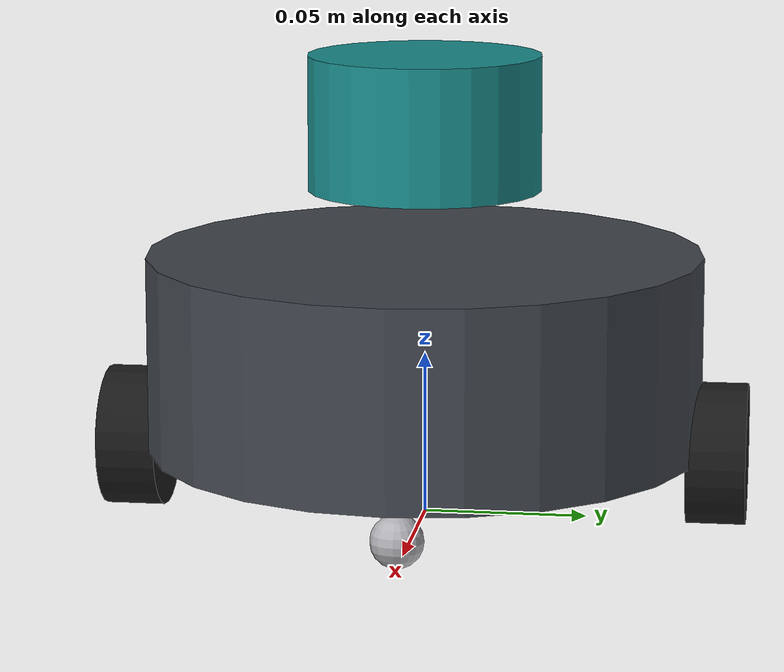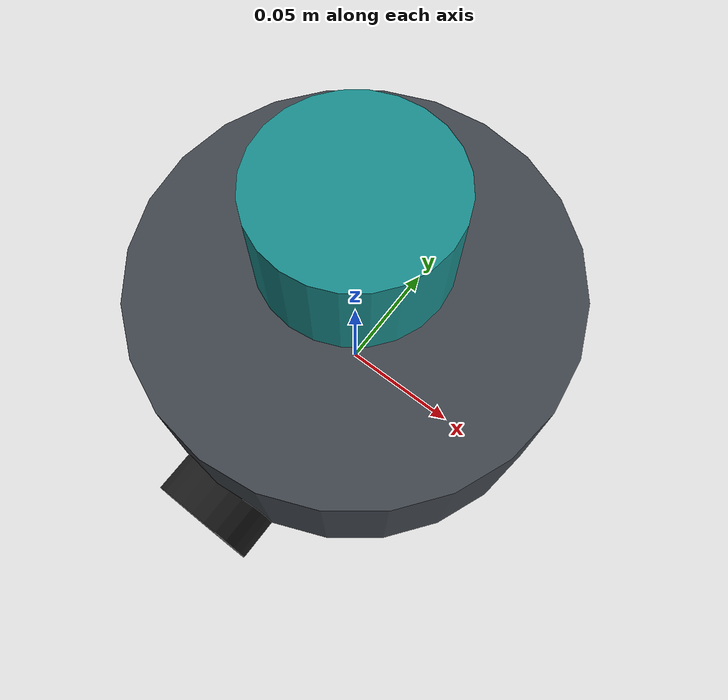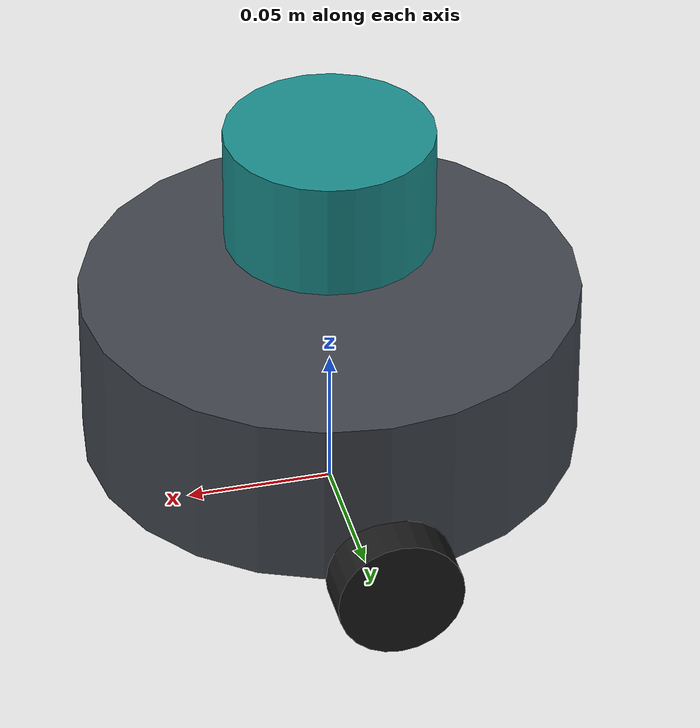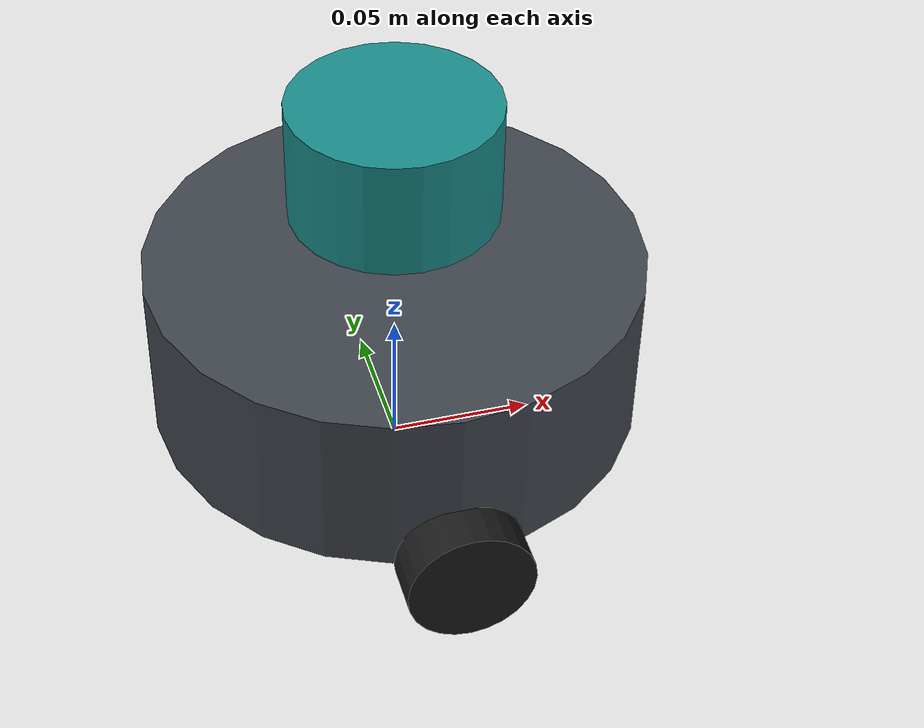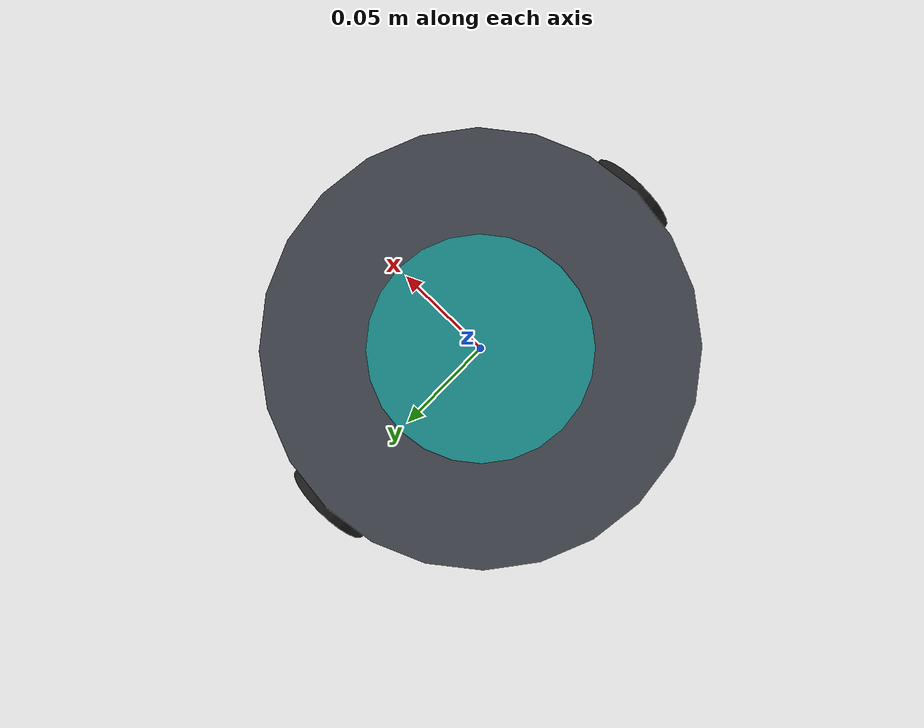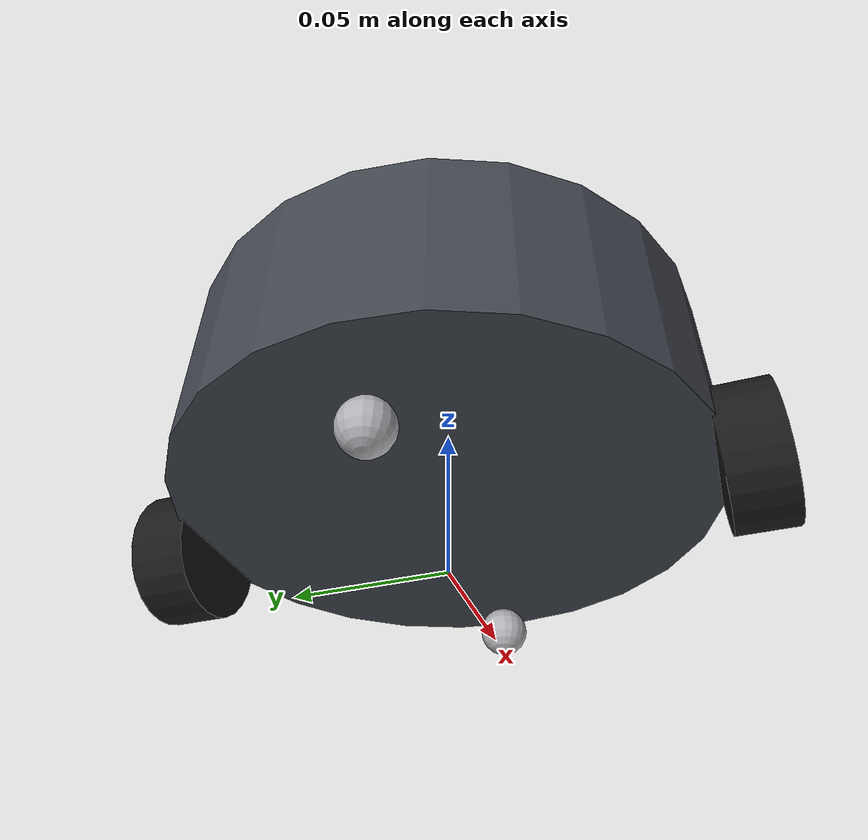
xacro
<?xml version="1.0"?>
<robot xmlns:xacro="http://www.ros.org/wiki/xacro" name="bot">

  <!-- ==========================================================
       Arguments
       ========================================================== -->
  <!-- true  -> mock_components/GenericSystem, no ESP32 needed
       false -> the real bot_hardware micro-ROS bridge -->
  <xacro:arg name="use_mock_hardware" default="false"/>

  <!-- Topics the hardware interface uses to talk to the ESP32 -->
  <xacro:arg name="wheel_cmd_topic"   default="/wheel_cmd"/>
  <xacro:arg name="wheel_state_topic" default="/wheel_state"/>

  <!-- ==========================================================
       Geometry  (metres / kg)
       ========================================================== -->
  <!-- Circular chassis: 170 mm diameter -->
  <xacro:property name="base_radius"    value="0.085"/>
  <xacro:property name="base_height"    value="0.060"/>
  <xacro:property name="base_mass"      value="0.900"/>

  <!-- Wheels: 43 mm diameter. Wheel separation (track) is 180 mm, so each
       wheel centre sits 90 mm off the centreline - slightly outside the
       chassis edge, which matches the build. -->
  <xacro:property name="wheel_radius"     value="0.0215"/>
  <xacro:property name="wheel_width"      value="0.018"/>
  <xacro:property name="wheel_separation" value="0.180"/>
  <xacro:property name="wheel_mass"       value="0.030"/>
  <!-- Wheels sit on the centre line of the chassis (x = 0). Move this if your
       axle is forward or aft of centre. -->
  <xacro:property name="wheel_x_offset"   value="0.0"/>

  <!-- Ball casters, front and rear -->
  <xacro:property name="caster_radius"    value="0.008"/>
  <xacro:property name="caster_x"         value="0.062"/>

  <!-- RPLidar A1M8 mount, relative to base_link -->
  <xacro:property name="lidar_x"          value="0.0"/>
  <xacro:property name="lidar_y"          value="0.0"/>
  <xacro:property name="lidar_z"          value="0.100"/>
  <!-- Rotate the laser frame if the lidar's zero-degree mark does not point
       straight ahead. See docs/CALIBRATION.md, "Lidar alignment". -->
  <xacro:property name="lidar_yaw"        value="0.0"/>

  <!-- MPU6050 mount, relative to base_link -->
  <xacro:property name="imu_x"            value="0.0"/>
  <xacro:property name="imu_y"            value="0.0"/>
  <xacro:property name="imu_z"            value="0.040"/>

  <!-- Command limits -->
  <xacro:property name="max_wheel_rad_s"  value="14.0"/>

  <!-- ==========================================================
       Includes
       ========================================================== -->
  <xacro:include filename="$(find bot_description)/urdf/materials.xacro"/>
  <xacro:include filename="$(find bot_description)/urdf/inertial_macros.xacro"/>
  <xacro:include filename="$(find bot_description)/urdf/base.xacro"/>
  <xacro:include filename="$(find bot_description)/urdf/wheels.xacro"/>
  <xacro:include filename="$(find bot_description)/urdf/sensors.xacro"/>
  <xacro:include filename="$(find bot_description)/urdf/ros2_control.xacro"/>

</robot>

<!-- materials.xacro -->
<robot xmlns:xacro="http://www.ros.org/wiki/xacro">

  <material name="chassis_grey">  <color rgba="0.25 0.27 0.30 1.0"/></material>
  <material name="wheel_black">   <color rgba="0.10 0.10 0.10 1.0"/></material>
  <material name="caster_silver"> <color rgba="0.70 0.70 0.72 1.0"/></material>
  <material name="lidar_teal">    <color rgba="0.10 0.55 0.55 1.0"/></material>
  <material name="imu_amber">     <color rgba="0.85 0.55 0.10 1.0"/></material>

</robot>

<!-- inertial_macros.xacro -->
<robot xmlns:xacro="http://www.ros.org/wiki/xacro">

  <xacro:macro name="inertial_cylinder" params="mass radius length *origin">
    <inertial>
      <xacro:insert_block name="origin"/>
      <mass value="${mass}"/>
      <inertia
        ixx="${(1.0/12.0) * mass * (3.0*radius*radius + length*length)}" ixy="0.0" ixz="0.0"
        iyy="${(1.0/12.0) * mass * (3.0*radius*radius + length*length)}" iyz="0.0"
        izz="${0.5 * mass * radius * radius}"/>
    </inertial>
  </xacro:macro>

  <xacro:macro name="inertial_box" params="mass x y z *origin">
    <inertial>
      <xacro:insert_block name="origin"/>
      <mass value="${mass}"/>
      <inertia
        ixx="${(1.0/12.0) * mass * (y*y + z*z)}" ixy="0.0" ixz="0.0"
        iyy="${(1.0/12.0) * mass * (x*x + z*z)}" iyz="0.0"
        izz="${(1.0/12.0) * mass * (x*x + y*y)}"/>
    </inertial>
  </xacro:macro>

  <xacro:macro name="inertial_sphere" params="mass radius *origin">
    <inertial>
      <xacro:insert_block name="origin"/>
      <mass value="${mass}"/>
      <inertia
        ixx="${(2.0/5.0) * mass * radius * radius}" ixy="0.0" ixz="0.0"
        iyy="${(2.0/5.0) * mass * radius * radius}" iyz="0.0"
        izz="${(2.0/5.0) * mass * radius * radius}"/>
    </inertial>
  </xacro:macro>

</robot>

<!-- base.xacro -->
<robot xmlns:xacro="http://www.ros.org/wiki/xacro">

  <link name="base_footprint"/>

  <joint name="base_joint" type="fixed">
    <parent link="base_footprint"/>
    <child  link="base_link"/>
    <origin xyz="0 0 ${wheel_radius}" rpy="0 0 0"/>
  </joint>

  <link name="base_link">
    <visual>
      <origin xyz="0 0 ${base_height/2}" rpy="0 0 0"/>
      <geometry>
        <cylinder radius="${base_radius}" length="${base_height}"/>
      </geometry>
      <material name="chassis_grey"/>
    </visual>

    <collision>
      <origin xyz="0 0 ${base_height/2}" rpy="0 0 0"/>
      <geometry>
        <cylinder radius="${base_radius}" length="${base_height}"/>
      </geometry>
    </collision>

    <xacro:inertial_cylinder mass="${base_mass}" radius="${base_radius}" length="${base_height}">
      <origin xyz="0 0 ${base_height/2}" rpy="0 0 0"/>
    </xacro:inertial_cylinder>
  </link>

  <xacro:macro name="caster" params="name x">
    <link name="${name}_caster">
      <visual>
        <geometry><sphere radius="${caster_radius}"/></geometry>
        <material name="caster_silver"/>
      </visual>
      <collision>
        <geometry><sphere radius="${caster_radius}"/></geometry>
      </collision>
      <xacro:inertial_sphere mass="0.005" radius="${caster_radius}">
        <origin xyz="0 0 0" rpy="0 0 0"/>
      </xacro:inertial_sphere>
    </link>

    <joint name="${name}_caster_joint" type="fixed">
      <parent link="base_link"/>
      <child  link="${name}_caster"/>
      <origin xyz="${x} 0 ${caster_radius - wheel_radius}" rpy="0 0 0"/>
    </joint>
  </xacro:macro>

  <xacro:caster name="front" x="${caster_x}"/>
  <xacro:caster name="rear"  x="${-caster_x}"/>

</robot>

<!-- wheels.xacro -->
<!--
  Drive wheels. Joint names MUST match the ones in
  bot_bringup/config/controllers.yaml and in ros2_control.xacro:
      left_wheel_joint / right_wheel_joint
-->
<robot xmlns:xacro="http://www.ros.org/wiki/xacro">

  <xacro:macro name="drive_wheel" params="prefix y_sign">
    <link name="${prefix}_wheel">
      <visual>
        <origin xyz="0 0 0" rpy="${pi/2} 0 0"/>
        <geometry>
          <cylinder radius="${wheel_radius}" length="${wheel_width}"/>
        </geometry>
        <material name="wheel_black"/>
      </visual>

      <collision>
        <origin xyz="0 0 0" rpy="${pi/2} 0 0"/>
        <geometry>
          <cylinder radius="${wheel_radius}" length="${wheel_width}"/>
        </geometry>
      </collision>

      <xacro:inertial_cylinder mass="${wheel_mass}" radius="${wheel_radius}" length="${wheel_width}">
        <origin xyz="0 0 0" rpy="${pi/2} 0 0"/>
      </xacro:inertial_cylinder>
    </link>

    <joint name="${prefix}_wheel_joint" type="continuous">
      <parent link="base_link"/>
      <child  link="${prefix}_wheel"/>
      <origin xyz="${wheel_x_offset} ${y_sign * wheel_separation / 2} 0" rpy="0 0 0"/>
      <!-- Both wheels rotate about +Y (robot-left). A positive joint velocity
           therefore drives the robot forward on BOTH sides - the mirroring is
           handled in the firmware, not here. -->
      <axis xyz="0 1 0"/>
      <limit effort="1.0" velocity="${max_wheel_rad_s}"/>
      <dynamics damping="0.01" friction="0.001"/>
    </joint>
  </xacro:macro>

  <xacro:drive_wheel prefix="left"  y_sign="1"/>
  <xacro:drive_wheel prefix="right" y_sign="-1"/>

</robot>

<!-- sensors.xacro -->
<robot xmlns:xacro="http://www.ros.org/wiki/xacro">

  <!-- ================= RPLidar A1M8 ================= -->
  <link name="laser_frame">
    <visual>
      <origin xyz="0 0 0" rpy="0 0 0"/>
      <geometry><cylinder radius="0.0355" length="0.041"/></geometry>
      <material name="lidar_teal"/>
    </visual>
    <collision>
      <geometry><cylinder radius="0.0355" length="0.041"/></geometry>
    </collision>
    <xacro:inertial_cylinder mass="0.170" radius="0.0355" length="0.041">
      <origin xyz="0 0 0" rpy="0 0 0"/>
    </xacro:inertial_cylinder>
  </link>

  <joint name="laser_joint" type="fixed">
    <parent link="base_link"/>
    <child  link="laser_frame"/>
    <origin xyz="${lidar_x} ${lidar_y} ${lidar_z}" rpy="0 0 ${lidar_yaw}"/>
  </joint>

  <!-- ================= MPU6050 ================= -->
  <link name="imu_link">
    <visual>
      <geometry><box size="0.020 0.016 0.003"/></geometry>
      <material name="imu_amber"/>
    </visual>
    <xacro:inertial_box mass="0.005" x="0.020" y="0.016" z="0.003">
      <origin xyz="0 0 0" rpy="0 0 0"/>
    </xacro:inertial_box>
  </link>

  <joint name="imu_joint" type="fixed">
    <parent link="base_link"/>
    <child  link="imu_link"/>
    <!-- If the MPU6050 is glued down rotated, put the rotation in the rpy here
         AND leave the firmware axes alone - one place to get it wrong is
         better than two. -->
    <origin xyz="${imu_x} ${imu_y} ${imu_z}" rpy="0 0 0"/>
  </joint>

</robot>
